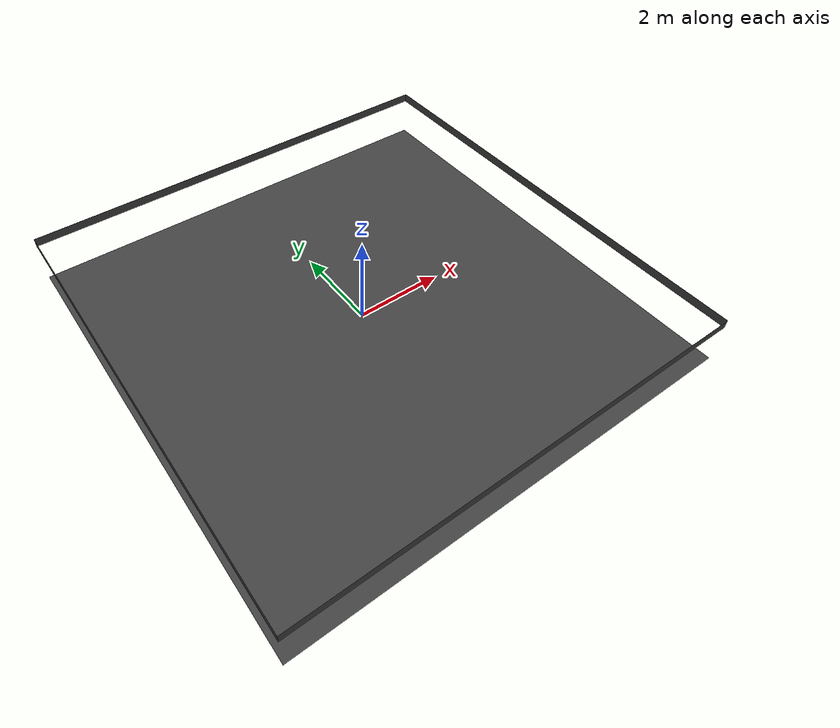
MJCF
<?xml version="1.0" ?>
<mujoco model="simple_robot_world">
  <!-- Compiler settings -->
  <compiler angle="degree" coordinate="local" inertiafromgeom="true"/>

  <!-- Default settings -->
  <default>
    <joint type="hinge" damping="1" frictionloss="0.1"/>
    <geom friction="1 0.1 0.1" margin="0.001" condim="3"/>
  </default>

  <!-- Assets -->
  <asset>
    <!-- Define textures for the tiled floor -->
    <texture name="floor_texture" type="2d" builtin="checker" width="300" height="300" rgb1="0.2 0.2 0.2" rgb2="0.3 0.3 0.3"/>
    <material name="floor_material" texture="floor_texture" texscale="10 10" reflectance="0.1"/>
  </asset>

  <!-- World settings -->
  <option timestep="0.002" iterations="50" gravity="0 0 -9.81"/>

  <!-- Lighting -->
  <lighting>
    <light pos="0 0 1.5" dir="0 0 -1" directional="true" diffuse="0.8 0.8 0.8" specular="0.5 0.5 0.5"/>
    <light pos="1 1 1" dir="-1 -1 -1" directional="false" diffuse="0.3 0.3 0.3" specular="0.2 0.2 0.2"/>
  </lighting>

  <!-- World body -->
  <worldbody>
    <!-- Tiled floor -->
    <geom name="floor" type="plane" size="5 5 0.1" pos="0 0 0" material="floor_material"/>

    <!-- Optional: Add walls for better scene containment -->
    <geom name="wall_north" type="plane" size="5 0.1 1" pos="0 5 1" material="floor_material" euler="90 0 0"/>
    <geom name="wall_south" type="plane" size="5 0.1 1" pos="0 -5 1" material="floor_material" euler="90 0 0"/>
    <geom name="wall_east" type="plane" size="0.1 5 1" pos="5 0 1" material="floor_material" euler="0 90 0"/>
    <geom name="wall_west" type="plane" size="0.1 5 1" pos="-5 0 1" material="floor_material" euler="0 90 0"/>
  </worldbody>
</mujoco>
